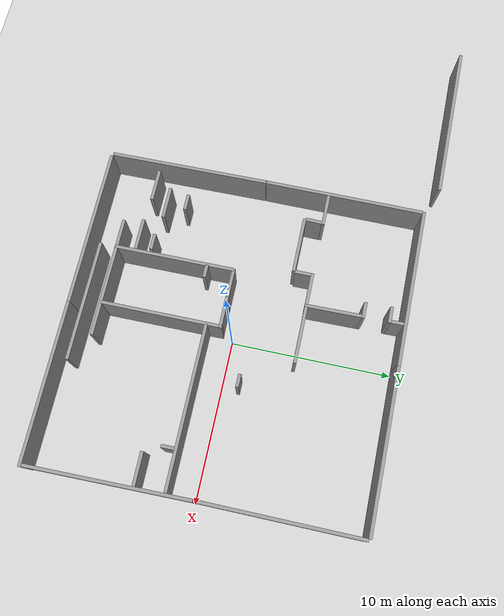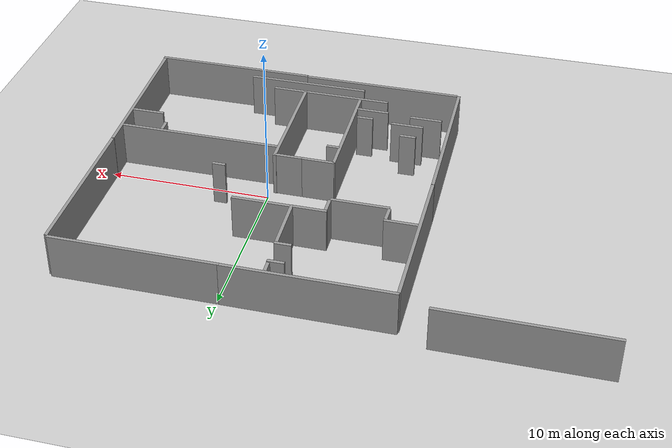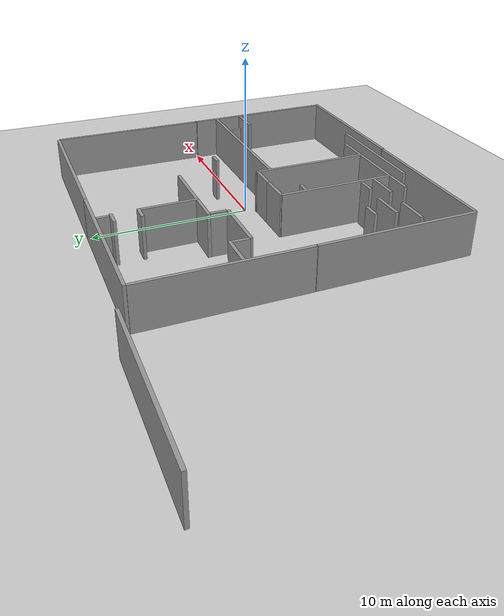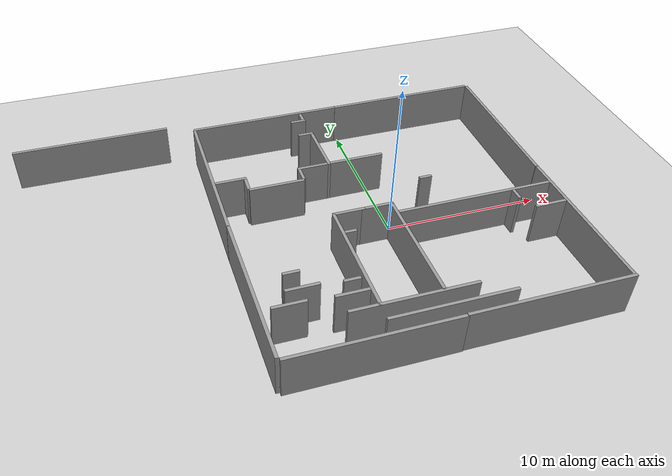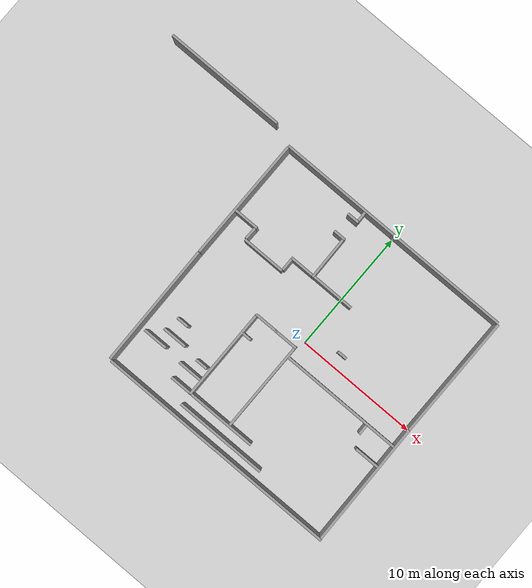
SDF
<sdf version="1.7">
 <world name="default">
  <light name="sun" type="directional">
   <pose>0 0 10 0 -0 0</pose>
   <diffuse>0.8 0.8 0.8 1</diffuse>
   <specular>0.2 0.2 0.2 1</specular>
   <attenuation>
    <range>1000</range>
    <constant>0.9</constant>
    <linear>0.01</linear>
    <quadratic>0.001</quadratic>
   </attenuation>
   <direction>-0.5 0.1 -0.9</direction>
   <spot><inner_angle>0</inner_angle><outer_angle>0</outer_angle><falloff>0</falloff></spot>
  </light>
  <model name="ground_plane">
   <static>1</static>
   <link name="link">
    <collision name="collision">
     <geometry><plane><normal>0 0 1</normal><size>100 100</size></plane></geometry>
     <surface><friction><ode><mu>100</mu><mu2>50</mu2></ode></friction></surface>
    </collision>
    <visual name="visual">
     <cast_shadows>0</cast_shadows>
     <geometry><plane><normal>0 0 1</normal><size>100 100</size></plane></geometry>
     <material>
      <script><uri>file://media/materials/scripts/gazebo.material</uri><name>Gazebo/Grey</name></script>
     </material>
    </visual>
   </link>
  </model>
  <gravity>0 0 -9.8</gravity>
  <magnetic_field>6e-06 2.3e-05 -4.2e-05</magnetic_field>
  <atmosphere type="adiabatic"/>
  <physics type="ode">
   <max_step_size>0.001</max_step_size>
   <real_time_factor>1</real_time_factor>
   <real_time_update_rate>1000</real_time_update_rate>
  </physics>
  <scene><ambient>0.4 0.4 0.4 1</ambient><background>0.7 0.7 0.7 1</background><shadows>1</shadows></scene>
  <audio><device>default</device></audio>
  <spherical_coordinates>
   <surface_model>EARTH_WGS84</surface_model>
   <latitude_deg>0</latitude_deg>
   <longitude_deg>0</longitude_deg>
   <elevation>0</elevation>
   <heading_deg>0</heading_deg>
  </spherical_coordinates>
  <model name="grey_wall_medium">
   <static>1</static>
   <link name="link">
    <pose>0 0 1.4 0 -0 0</pose>
    <collision name="collision"><geometry><box><size>10 0.2 2.8</size></box></geometry></collision>
    <visual name="visual">
     <cast_shadows>0</cast_shadows>
     <geometry><box><size>10 0.2 2.8</size></box></geometry>
     <material>
      <script>
       <uri>model://grey_wall_medium/materials/scripts</uri>
       <uri>model://grey_wall_medium/materials/textures</uri>
       <name>vrc/grey_wall_medium</name>
      </script>
     </material>
    </visual>
   </link>
   <pose>-5.16964 10.1308 0 0 -0 0</pose>
  </model>
  <model name="grey_wall_small">
   <static>1</static>
   <link name="link">
    <pose>0 0 1.4 0 -0 0</pose>
    <collision name="collision"><geometry><box><size>7.5 0.2 2.8</size></box></geometry></collision>
    <visual name="visual">
     <cast_shadows>0</cast_shadows>
     <geometry><box><size>7.5 0.2 2.8</size></box></geometry>
     <material>
      <script>
       <uri>model://grey_wall_small/materials/scripts</uri>
       <uri>model://grey_wall_small/materials/textures</uri>
       <name>vrc/grey_wall_small</name>
      </script>
     </material>
    </visual>
   </link>
   <pose>-0.286849 -4.34749 0 0 0 -1.56634</pose>
  </model>
  <model name="grey_wall_smaller">
   <static>1</static>
   <link name="link">
    <pose>0 0 1.4 0 -0 0</pose>
    <collision name="collision"><geometry><box><size>3.5 0.2 2.8</size></box></geometry></collision>
    <visual name="visual">
     <cast_shadows>0</cast_shadows>
     <geometry><box><size>3.5 0.2 2.8</size></box></geometry>
     <material>
      <script>
       <uri>model://grey_wall_smaller/materials/scripts</uri>
       <uri>model://grey_wall_smaller/materials/textures</uri>
       <name>vrc/grey_wall_smaller</name>
      </script>
     </material>
    </visual>
   </link>
   <pose>-6.39154 2.89066 0 0 -0 0</pose>
  </model>
  <model name="grey_wall_tiny">
   <static>1</static>
   <link name="link">
    <pose>0 0 1.4 0 -0 0</pose>
    <collision name="collision"><geometry><box><size>1 0.2 2.8</size></box></geometry></collision>
    <visual name="visual">
     <cast_shadows>0</cast_shadows>
     <geometry><box><size>1 0.2 2.8</size></box></geometry>
     <material>
      <script>
       <uri>model://grey_wall_tinier/materials/scripts</uri>
       <uri>model://grey_wall_tinier/materials/textures</uri>
       <name>vrc/grey_wall_tinier</name>
      </script>
     </material>
    </visual>
   </link>
   <pose>-3.11088 7.55965 0 0 -0 0</pose>
  </model>
  <model name="grey_wall_tiny_0">
   <static>1</static>
   <link name="link">
    <pose>0 0 1.4 0 -0 0</pose>
    <collision name="collision"><geometry><box><size>2 0.2 2.8</size></box></geometry></collision>
    <visual name="visual">
     <cast_shadows>0</cast_shadows>
     <geometry><box><size>2 0.2 2.8</size></box></geometry>
     <material>
      <script>
       <uri>model://grey_wall_tiny/materials/scripts</uri>
       <uri>model://grey_wall_tiny/materials/textures</uri>
       <name>vrc/grey_wall_tiny</name>
      </script>
     </material>
    </visual>
   </link>
   <pose>-9.02691 4.07405 0 0 -0 0</pose>
  </model>
  <model name="grey_wall_medium_0">
   <static>1</static>
   <link name="link">
    <pose>0 0 1.4 0 -0 0</pose>
    <collision name="collision"><geometry><box><size>10 0.2 2.8</size></box></geometry></collision>
    <visual name="visual">
     <cast_shadows>0</cast_shadows>
     <geometry><box><size>10 0.2 2.8</size></box></geometry>
     <material>
      <script>
       <uri>model://grey_wall_medium/materials/scripts</uri>
       <uri>model://grey_wall_medium/materials/textures</uri>
       <name>vrc/grey_wall_medium</name>
      </script>
     </material>
    </visual>
   </link>
   <pose>-10.1109 5.04325 0 0 -0 1.57303</pose>
  </model>
  <model name="grey_wall_medium_1">
   <static>1</static>
   <link name="link">
    <pose>0 0 1.4 0 -0 0</pose>
    <collision name="collision"><geometry><box><size>10 0.2 2.8</size></box></geometry></collision>
    <visual name="visual">
     <cast_shadows>0</cast_shadows>
     <geometry><box><size>10 0.2 2.8</size></box></geometry>
     <material>
      <script>
       <uri>model://grey_wall_medium/materials/scripts</uri>
       <uri>model://grey_wall_medium/materials/textures</uri>
       <name>vrc/grey_wall_medium</name>
      </script>
     </material>
    </visual>
   </link>
   <pose>4.75046 10.1214 0 0 -0 0</pose>
  </model>
  <model name="grey_wall_medium_2">
   <static>1</static>
   <link name="link">
    <pose>0 0 1.4 0 -0 0</pose>
    <collision name="collision"><geometry><box><size>10 0.2 2.8</size></box></geometry></collision>
    <visual name="visual">
     <cast_shadows>0</cast_shadows>
     <geometry><box><size>10 0.2 2.8</size></box></geometry>
     <material>
      <script>
       <uri>model://grey_wall_medium/materials/scripts</uri>
       <uri>model://grey_wall_medium/materials/textures</uri>
       <name>vrc/grey_wall_medium</name>
      </script>
     </material>
    </visual>
   </link>
   <pose>9.82364 5.05003 0 0 -0 1.56977</pose>
  </model>
  <model name="grey_wall_medium_3">
   <static>1</static>
   <link name="link">
    <pose>0 0 1.4 0 -0 0</pose>
    <collision name="collision"><geometry><box><size>10 0.2 2.8</size></box></geometry></collision>
    <visual name="visual">
     <cast_shadows>0</cast_shadows>
     <geometry><box><size>10 0.2 2.8</size></box></geometry>
     <material>
      <script>
       <uri>model://grey_wall_medium/materials/scripts</uri>
       <uri>model://grey_wall_medium/materials/textures</uri>
       <name>vrc/grey_wall_medium</name>
      </script>
     </material>
    </visual>
   </link>
   <pose>-4.83651 -10.0626 -0.048629 0 -0 0</pose>
  </model>
  <model name="grey_wall_medium_4">
   <static>1</static>
   <link name="link">
    <pose>0 0 1.4 0 -0 0</pose>
    <collision name="collision"><geometry><box><size>10 0.2 2.8</size></box></geometry></collision>
    <visual name="visual">
     <cast_shadows>0</cast_shadows>
     <geometry><box><size>10 0.2 2.8</size></box></geometry>
     <material>
      <script>
       <uri>model://grey_wall_medium/materials/scripts</uri>
       <uri>model://grey_wall_medium/materials/textures</uri>
       <name>vrc/grey_wall_medium</name>
      </script>
     </material>
    </visual>
   </link>
   <pose>5.09835 -10.0495 0 0 -0 0</pose>
  </model>
  <model name="grey_wall_medium_5">
   <static>1</static>
   <link name="link">
    <pose>0 0 1.4 0 -0 0</pose>
    <collision name="collision"><geometry><box><size>10 0.2 2.8</size></box></geometry></collision>
    <visual name="visual">
     <cast_shadows>0</cast_shadows>
     <geometry><box><size>10 0.2 2.8</size></box></geometry>
     <material>
      <script>
       <uri>model://grey_wall_medium/materials/scripts</uri>
       <uri>model://grey_wall_medium/materials/textures</uri>
       <name>vrc/grey_wall_medium</name>
      </script>
     </material>
    </visual>
   </link>
   <pose>9.89923 -4.97965 0 0 -0 1.58534</pose>
  </model>
  <model name="grey_wall_medium_6">
   <static>1</static>
   <link name="link">
    <pose>0 0 1.4 0 -0 0</pose>
    <collision name="collision"><geometry><box><size>10 0.2 2.8</size></box></geometry></collision>
    <visual name="visual">
     <cast_shadows>0</cast_shadows>
     <geometry><box><size>10 0.2 2.8</size></box></geometry>
     <material>
      <script>
       <uri>model://grey_wall_medium/materials/scripts</uri>
       <uri>model://grey_wall_medium/materials/textures</uri>
       <name>vrc/grey_wall_medium</name>
      </script>
     </material>
    </visual>
   </link>
   <pose>-10.0322 -4.98227 0 0 -0 1.58399</pose>
  </model>
  <model name="grey_wall_micro_0">
   <static>1</static>
   <link name="link">
    <pose>0 0 1.4 0 -0 0</pose>
    <collision name="collision"><geometry><box><size>0.8 0.2 2.8</size></box></geometry></collision>
    <visual name="visual">
     <cast_shadows>0</cast_shadows>
     <geometry><box><size>0.8 0.2 2.8</size></box></geometry>
     <material>
      <script>
       <uri>model://grey_wall_micro/materials/scripts</uri>
       <uri>model://grey_wall_micro/materials/textures</uri>
       <name>vrc/grey_wall_micro</name>
      </script>
     </material>
    </visual>
   </link>
   <pose>-2.77066 9.638 -0.057933 0 -0 1.59408</pose>
  </model>
  <model name="grey_wall_medium_7">
   <static>1</static>
   <link name="link">
    <pose>0 0 1.4 0 -0 0</pose>
    <collision name="collision"><geometry><box><size>10 0.2 2.8</size></box></geometry></collision>
    <visual name="visual">
     <cast_shadows>0</cast_shadows>
     <geometry><box><size>10 0.2 2.8</size></box></geometry>
     <material>
      <script>
       <uri>model://grey_wall_medium/materials/scripts</uri>
       <uri>model://grey_wall_medium/materials/textures</uri>
       <name>vrc/grey_wall_medium</name>
      </script>
     </material>
    </visual>
   </link>
   <pose>4.74204 -1.57651 0 0 -0 0</pose>
  </model>
  <model name="grey_wall_smaller_0">
   <static>1</static>
   <link name="link">
    <pose>0 0 1.4 0 -0 0</pose>
    <collision name="collision"><geometry><box><size>3.5 0.2 2.8</size></box></geometry></collision>
    <visual name="visual">
     <cast_shadows>0</cast_shadows>
     <geometry><box><size>3.5 0.2 2.8</size></box></geometry>
     <material>
      <script>
       <uri>model://grey_wall_smaller/materials/scripts</uri>
       <uri>model://grey_wall_smaller/materials/textures</uri>
       <name>vrc/grey_wall_smaller</name>
      </script>
     </material>
    </visual>
   </link>
   <pose>-2.68343 5.72272 0 0 -0 1.5876</pose>
  </model>
  <model name="grey_wall_tiny_1">
   <static>1</static>
   <link name="link">
    <pose>0 0 1.4 0 -0 0</pose>
    <collision name="collision"><geometry><box><size>1 0.2 2.8</size></box></geometry></collision>
    <visual name="visual">
     <cast_shadows>0</cast_shadows>
     <geometry><box><size>1 0.2 2.8</size></box></geometry>
     <material>
      <script>
       <uri>model://grey_wall_tinier/materials/scripts</uri>
       <uri>model://grey_wall_tinier/materials/textures</uri>
       <name>vrc/grey_wall_tinier</name>
      </script>
     </material>
    </visual>
   </link>
   <pose>-4.63138 3.47945 0 0 -0 1.57462</pose>
  </model>
  <model name="grey_wall_tiny_2">
   <static>1</static>
   <link name="link">
    <pose>0 0 1.4 0 -0 0</pose>
    <collision name="collision"><geometry><box><size>2 0.2 2.8</size></box></geometry></collision>
    <visual name="visual">
     <cast_shadows>0</cast_shadows>
     <geometry><box><size>2 0.2 2.8</size></box></geometry>
     <material>
      <script>
       <uri>model://grey_wall_tiny/materials/scripts</uri>
       <uri>model://grey_wall_tiny/materials/textures</uri>
       <name>vrc/grey_wall_tiny</name>
      </script>
     </material>
    </visual>
   </link>
   <pose>-3.73476 4.06641 0 0 -0 0</pose>
  </model>
  <model name="grey_wall_tiny_3">
   <static>1</static>
   <link name="link">
    <pose>0 0 1.4 0 -0 0</pose>
    <collision name="collision"><geometry><box><size>1 0.2 2.8</size></box></geometry></collision>
    <visual name="visual">
     <cast_shadows>0</cast_shadows>
     <geometry><box><size>1 0.2 2.8</size></box></geometry>
     <material>
      <script>
       <uri>model://grey_wall_tinier/materials/scripts</uri>
       <uri>model://grey_wall_tinier/materials/textures</uri>
       <name>vrc/grey_wall_tinier</name>
      </script>
     </material>
    </visual>
   </link>
   <pose>-8.13 3.47377 0 0 -0 1.54825</pose>
  </model>
  <model name="grey_wall_tiny_clone">
   <static>1</static>
   <link name="link">
    <pose>0 0 1.4 0 -0 0</pose>
    <collision name="collision"><geometry><box><size>1 0.2 2.8</size></box></geometry></collision>
    <visual name="visual">
     <cast_shadows>0</cast_shadows>
     <geometry><box><size>1 0.2 2.8</size></box></geometry>
     <material>
      <script>
       <uri>model://grey_wall_tinier/materials/scripts</uri>
       <uri>model://grey_wall_tinier/materials/textures</uri>
       <name>vrc/grey_wall_tinier</name>
      </script>
     </material>
    </visual>
   </link>
   <pose>-3.16531 9.15359 0 0 -0 0</pose>
  </model>
  <model name="grey_wall_medium_8">
   <static>1</static>
   <link name="link">
    <pose>0 0 1.4 0 -0 0</pose>
    <collision name="collision"><geometry><box><size>10 0.2 2.8</size></box></geometry></collision>
    <visual name="visual">
     <cast_shadows>0</cast_shadows>
     <geometry><box><size>10 0.2 2.8</size></box></geometry>
     <material>
      <script>
       <uri>model://grey_wall_medium/materials/scripts</uri>
       <uri>model://grey_wall_medium/materials/textures</uri>
       <name>vrc/grey_wall_medium</name>
      </script>
     </material>
    </visual>
   </link>
   <pose>-16.884 10.8524 0 0 -0 0</pose>
  </model>
  <model name="grey_wall_micro">
   <static>1</static>
   <link name="link">
    <pose>0 0 1.4 0 -0 0</pose>
    <collision name="collision"><geometry><box><size>0.8 0.2 2.8</size></box></geometry></collision>
    <visual name="visual">
     <cast_shadows>0</cast_shadows>
     <geometry><box><size>0.8 0.2 2.8</size></box></geometry>
     <material>
      <script>
       <uri>model://grey_wall_micro/materials/scripts</uri>
       <uri>model://grey_wall_micro/materials/textures</uri>
       <name>vrc/grey_wall_micro</name>
      </script>
     </material>
    </visual>
   </link>
   <pose>-3.51253 -2.38231 0 0 -0 0</pose>
  </model>
  <model name="grey_wall_small_0">
   <static>1</static>
   <link name="link">
    <pose>0 0 1.4 0 -0 0</pose>
    <collision name="collision"><geometry><box><size>7.5 0.2 2.8</size></box></geometry></collision>
    <visual name="visual">
     <cast_shadows>0</cast_shadows>
     <geometry><box><size>7.5 0.2 2.8</size></box></geometry>
     <material>
      <script>
       <uri>model://grey_wall_small/materials/scripts</uri>
       <uri>model://grey_wall_small/materials/textures</uri>
       <name>vrc/grey_wall_small</name>
      </script>
     </material>
    </visual>
   </link>
   <pose>-1.94461 -8.12925 0 0 -0 0</pose>
  </model>
  <model name="grey_wall_tiny_4">
   <static>1</static>
   <link name="link">
    <pose>0 0 1.4 0 -0 0</pose>
    <collision name="collision"><geometry><box><size>1 0.2 2.8</size></box></geometry></collision>
    <visual name="visual">
     <cast_shadows>0</cast_shadows>
     <geometry><box><size>1 0.2 2.8</size></box></geometry>
     <material>
      <script>
       <uri>model://grey_wall_tinier/materials/scripts</uri>
       <uri>model://grey_wall_tinier/materials/textures</uri>
       <name>vrc/grey_wall_tinier</name>
      </script>
     </material>
    </visual>
   </link>
   <pose>-7.68542 -4.59555 0 0 -0 0</pose>
  </model>
  <model name="grey_wall_small_1">
   <static>1</static>
   <link name="link">
    <pose>0 0 1.4 0 -0 0</pose>
    <collision name="collision"><geometry><box><size>7.5 0.2 2.8</size></box></geometry></collision>
    <visual name="visual">
     <cast_shadows>0</cast_shadows>
     <geometry><box><size>7.5 0.2 2.8</size></box></geometry>
     <material>
      <script>
       <uri>model://grey_wall_small/materials/scripts</uri>
       <uri>model://grey_wall_small/materials/textures</uri>
       <name>vrc/grey_wall_small</name>
      </script>
     </material>
    </visual>
   </link>
   <pose>-0.19024 -9.14839 0 0 -0 0</pose>
  </model>
  <model name="grey_wall_tiny_5">
   <static>1</static>
   <link name="link">
    <pose>0 0 1.4 0 -0 0</pose>
    <collision name="collision"><geometry><box><size>1 0.2 2.8</size></box></geometry></collision>
    <visual name="visual">
     <cast_shadows>0</cast_shadows>
     <geometry><box><size>1 0.2 2.8</size></box></geometry>
     <material>
      <script>
       <uri>model://grey_wall_tinier/materials/scripts</uri>
       <uri>model://grey_wall_tinier/materials/textures</uri>
       <name>vrc/grey_wall_tinier</name>
      </script>
     </material>
    </visual>
   </link>
   <pose>-4.68157 -6.01647 0 0 -0 0</pose>
  </model>
  <model name="grey_wall_tiny_6">
   <static>1</static>
   <link name="link">
    <pose>0 0 1.4 0 -0 0</pose>
    <collision name="collision"><geometry><box><size>2 0.2 2.8</size></box></geometry></collision>
    <visual name="visual">
     <cast_shadows>0</cast_shadows>
     <geometry><box><size>2 0.2 2.8</size></box></geometry>
     <material>
      <script>
       <uri>model://grey_wall_tiny/materials/scripts</uri>
       <uri>model://grey_wall_tiny/materials/textures</uri>
       <name>vrc/grey_wall_tiny</name>
      </script>
     </material>
    </visual>
   </link>
   <pose>-7.40914 -5.80875 0 0 -0 0</pose>
  </model>
  <model name="grey_wall_tiny_7">
   <static>1</static>
   <link name="link">
    <pose>0 0 1.4 0 -0 0</pose>
    <collision name="collision"><geometry><box><size>2 0.2 2.8</size></box></geometry></collision>
    <visual name="visual">
     <cast_shadows>0</cast_shadows>
     <geometry><box><size>2 0.2 2.8</size></box></geometry>
     <material>
      <script>
       <uri>model://grey_wall_tiny/materials/scripts</uri>
       <uri>model://grey_wall_tiny/materials/textures</uri>
       <name>vrc/grey_wall_tiny</name>
      </script>
     </material>
    </visual>
   </link>
   <pose>-4.98696 -6.93972 0 0 -0 0</pose>
  </model>
  <model name="grey_wall_tiny_8">
   <static>1</static>
   <link name="link">
    <pose>0 0 1.4 0 -0 0</pose>
    <collision name="collision"><geometry><box><size>2 0.2 2.8</size></box></geometry></collision>
    <visual name="visual">
     <cast_shadows>0</cast_shadows>
     <geometry><box><size>2 0.2 2.8</size></box></geometry>
     <material>
      <script>
       <uri>model://grey_wall_tiny/materials/scripts</uri>
       <uri>model://grey_wall_tiny/materials/textures</uri>
       <name>vrc/grey_wall_tiny</name>
      </script>
     </material>
    </visual>
   </link>
   <pose>-8.4134 -6.7884 0 0 -0 0</pose>
  </model>
  <model name="grey_wall_tiny_6_clone">
   <static>1</static>
   <link name="link">
    <pose>0 0 1.4 0 -0 0</pose>
    <collision name="collision"><geometry><box><size>2 0.2 2.8</size></box></geometry></collision>
    <visual name="visual">
     <cast_shadows>0</cast_shadows>
     <geometry><box><size>2 0.2 2.8</size></box></geometry>
     <material>
      <script>
       <uri>model://grey_wall_tiny/materials/scripts</uri>
       <uri>model://grey_wall_tiny/materials/textures</uri>
       <name>vrc/grey_wall_tiny</name>
      </script>
     </material>
    </visual>
   </link>
   <pose>8.77553 -3.42781 0 0 -0 0.002384</pose>
  </model>
  <model name="grey_wall_small_0_clone">
   <static>1</static>
   <link name="link">
    <pose>0 0 1.4 0 -0 0</pose>
    <collision name="collision"><geometry><box><size>7.5 0.2 2.8</size></box></geometry></collision>
    <visual name="visual">
     <cast_shadows>0</cast_shadows>
     <geometry><box><size>7.5 0.2 2.8</size></box></geometry>
     <material>
      <script>
       <uri>model://grey_wall_small/materials/scripts</uri>
       <uri>model://grey_wall_small/materials/textures</uri>
       <name>vrc/grey_wall_small</name>
      </script>
     </material>
    </visual>
   </link>
   <pose>-3.92654 -4.4582 0 0 0 -1.56467</pose>
  </model>
  <model name="grey_wall_tiny_6_clone_0">
   <static>1</static>
   <link name="link">
    <pose>0 0 1.4 0 -0 0</pose>
    <collision name="collision"><geometry><box><size>2 0.2 2.8</size></box></geometry></collision>
    <visual name="visual">
     <cast_shadows>0</cast_shadows>
     <geometry><box><size>2 0.2 2.8</size></box></geometry>
     <material>
      <script>
       <uri>model://grey_wall_tiny/materials/scripts</uri>
       <uri>model://grey_wall_tiny/materials/textures</uri>
       <name>vrc/grey_wall_tiny</name>
      </script>
     </material>
    </visual>
   </link>
   <pose>-2.99898 -0.71687 0 0 -0 0</pose>
  </model>
  <model name="grey_wall_tiny_6_clone_1">
   <static>1</static>
   <link name="link">
    <pose>0 0 1.4 0 -0 0</pose>
    <collision name="collision"><geometry><box><size>2 0.2 2.8</size></box></geometry></collision>
    <visual name="visual">
     <cast_shadows>0</cast_shadows>
     <geometry><box><size>2 0.2 2.8</size></box></geometry>
     <material>
      <script>
       <uri>model://grey_wall_tiny/materials/scripts</uri>
       <uri>model://grey_wall_tiny/materials/textures</uri>
       <name>vrc/grey_wall_tiny</name>
      </script>
     </material>
    </visual>
   </link>
   <pose>-1.21847 -0.720623 0 0 -0 0</pose>
  </model>
  <model name="grey_wall_smaller_clone">
   <static>1</static>
   <link name="link">
    <pose>0 0 1.4 0 -0 0</pose>
    <collision name="collision"><geometry><box><size>3.5 0.2 2.8</size></box></geometry></collision>
    <visual name="visual">
     <cast_shadows>0</cast_shadows>
     <geometry><box><size>3.5 0.2 2.8</size></box></geometry>
     <material>
      <script>
       <uri>model://grey_wall_smaller/materials/scripts</uri>
       <uri>model://grey_wall_smaller/materials/textures</uri>
       <name>vrc/grey_wall_smaller</name>
      </script>
     </material>
    </visual>
   </link>
   <pose>-0.815606 4.0817 0 0 -0 0</pose>
  </model>
  <model name="grey_wall_micro_clone">
   <static>1</static>
   <link name="link">
    <pose>0 0 1.4 0 -0 0</pose>
    <collision name="collision"><geometry><box><size>0.8 0.2 2.8</size></box></geometry></collision>
    <visual name="visual">
     <cast_shadows>0</cast_shadows>
     <geometry><box><size>0.8 0.2 2.8</size></box></geometry>
     <material>
      <script>
       <uri>model://grey_wall_micro/materials/scripts</uri>
       <uri>model://grey_wall_micro/materials/textures</uri>
       <name>vrc/grey_wall_micro</name>
      </script>
     </material>
    </visual>
   </link>
   <pose>7.25251 -2.06625 0 0 -0 1.58546</pose>
  </model>
  <model name="grey_wall_micro_clone_0">
   <static>1</static>
   <link name="link">
    <pose>0 0 1.4 0 -0 0</pose>
    <collision name="collision"><geometry><box><size>0.8 0.2 2.8</size></box></geometry></collision>
    <visual name="visual">
     <cast_shadows>0</cast_shadows>
     <geometry><box><size>0.8 0.2 2.8</size></box></geometry>
     <material>
      <script>
       <uri>model://grey_wall_micro/materials/scripts</uri>
       <uri>model://grey_wall_micro/materials/textures</uri>
       <name>vrc/grey_wall_micro</name>
      </script>
     </material>
    </visual>
   </link>
   <pose>2.65521 1.05643 0 0 -0 0</pose>
  </model>
 </world>
</sdf>
